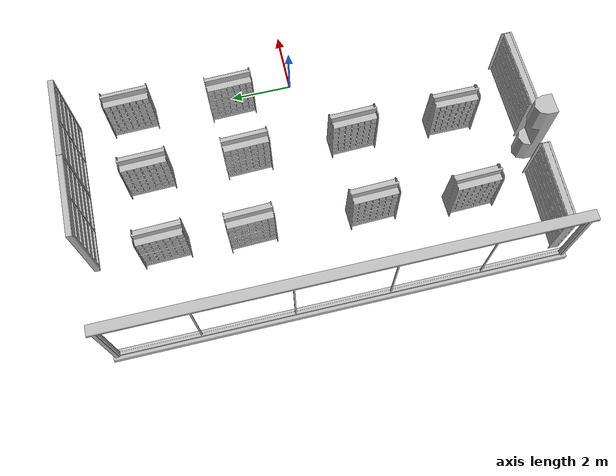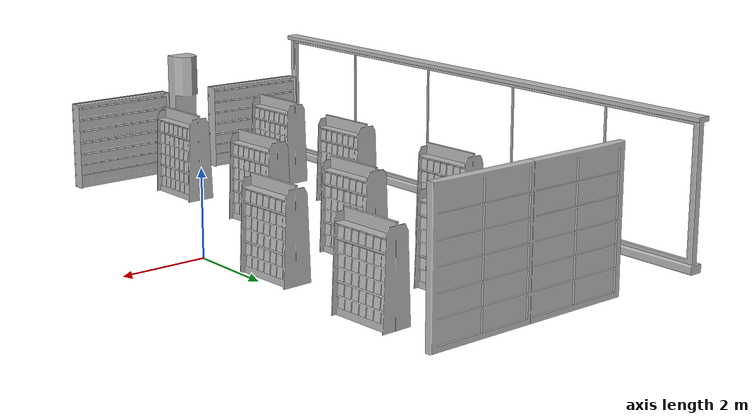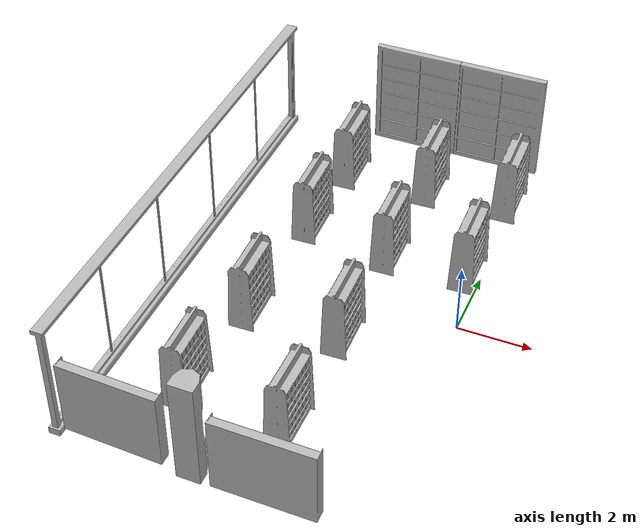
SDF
<sdf version="1.7">
 <world name="default">
  <model name="BookshelfA_01_003">
   <frame name="aws_robomaker_retail_BookshelfA_01::__model__" attached_to="aws_robomaker_retail_BookshelfA_01::link">
    <pose relative_to="__model__">0 0 0 0 -0 0</pose>
   </frame>
   <link name="aws_robomaker_retail_BookshelfA_01::link">
    <inertial>
     <mass>50</mass>
     <inertia><ixx>27.7341</ixx><ixy>0</ixy><ixz>0</ixz><iyy>20.9361</iyy><iyz>0</iyz><izz>11.3596</izz></inertia>
    </inertial>
    <collision name="collision">
     <geometry>
      <mesh>
       <uri>model://aws_robomaker_retail_BookshelfA_01/meshes/aws_BookshelfA_01_collision.DAE</uri>
       <scale>1 1 1</scale>
      </mesh>
     </geometry>
    </collision>
    <visual name="visual">
     <geometry>
      <mesh><uri>model://aws_robomaker_retail_BookshelfA_01/meshes/aws_BookshelfA_01_visual.DAE</uri></mesh>
     </geometry>
     <meta><layer>1</layer></meta>
    </visual>
    <pose relative_to="aws_robomaker_retail_BookshelfA_01::__model__">0 0 0 0 -0 0</pose>
   </link>
   <static>1</static>
   <pose>-2.55449 -1.48746 0.006337 0.001313 -0.001987 0.031824</pose>
  </model>
  <model name="BookshelfA_01_004">
   <frame name="aws_robomaker_retail_BookshelfA_01::__model__" attached_to="aws_robomaker_retail_BookshelfA_01::link">
    <pose relative_to="__model__">0 0 0 0 -0 0</pose>
   </frame>
   <link name="aws_robomaker_retail_BookshelfA_01::link">
    <inertial>
     <mass>50</mass>
     <inertia><ixx>27.7341</ixx><ixy>0</ixy><ixz>0</ixz><iyy>20.9361</iyy><iyz>0</iyz><izz>11.3596</izz></inertia>
    </inertial>
    <collision name="collision">
     <geometry>
      <mesh>
       <uri>model://aws_robomaker_retail_BookshelfA_01/meshes/aws_BookshelfA_01_collision.DAE</uri>
       <scale>1 1 1</scale>
      </mesh>
     </geometry>
    </collision>
    <visual name="visual">
     <geometry>
      <mesh><uri>model://aws_robomaker_retail_BookshelfA_01/meshes/aws_BookshelfA_01_visual.DAE</uri></mesh>
     </geometry>
     <meta><layer>1</layer></meta>
    </visual>
    <pose relative_to="aws_robomaker_retail_BookshelfA_01::__model__">0 0 0 0 -0 0</pose>
   </link>
   <static>1</static>
   <pose>-2.60858 -4.76165 0.003411 0 -0 0</pose>
  </model>
  <model name="BookshelfB_01_001">
   <frame name="aws_robomaker_retail_BookshelfB_01::__model__" attached_to="aws_robomaker_retail_BookshelfB_01::link">
    <pose relative_to="__model__">0 0 0 0 -0 0</pose>
   </frame>
   <link name="aws_robomaker_retail_BookshelfB_01::link">
    <inertial>
     <mass>50</mass>
     <inertia><ixx>19.8742</ixx><ixy>0</ixy><ixz>0</ixz><iyy>49.1263</iyy><iyz>0</iyz><izz>30.2231</izz></inertia>
    </inertial>
    <collision name="collision">
     <geometry>
      <mesh>
       <uri>model://aws_robomaker_retail_BookshelfB_01/meshes/aws_BookshelfB_01_collision.DAE</uri>
       <scale>1 1 1</scale>
      </mesh>
     </geometry>
    </collision>
    <visual name="visual">
     <geometry>
      <mesh><uri>model://aws_robomaker_retail_BookshelfB_01/meshes/aws_BookshelfB_01_visual.DAE</uri></mesh>
     </geometry>
     <meta><layer>1</layer></meta>
    </visual>
    <pose relative_to="aws_robomaker_retail_BookshelfB_01::__model__">0 0 0 0 -0 0</pose>
   </link>
   <static>1</static>
   <pose>-6.18968 -6.78565 -0.008942 0.003533 0.000121 -0.032073</pose>
  </model>
  <model name="BookshelfB_01_002">
   <frame name="aws_robomaker_retail_BookshelfB_01::__model__" attached_to="aws_robomaker_retail_BookshelfB_01::link">
    <pose relative_to="__model__">0 0 0 0 -0 0</pose>
   </frame>
   <link name="aws_robomaker_retail_BookshelfB_01::link">
    <inertial>
     <mass>50</mass>
     <inertia><ixx>19.8742</ixx><ixy>0</ixy><ixz>0</ixz><iyy>49.1263</iyy><iyz>0</iyz><izz>30.2231</izz></inertia>
    </inertial>
    <collision name="collision">
     <geometry>
      <mesh>
       <uri>model://aws_robomaker_retail_BookshelfB_01/meshes/aws_BookshelfB_01_collision.DAE</uri>
       <scale>1 1 1</scale>
      </mesh>
     </geometry>
    </collision>
    <visual name="visual">
     <geometry>
      <mesh><uri>model://aws_robomaker_retail_BookshelfB_01/meshes/aws_BookshelfB_01_visual.DAE</uri></mesh>
     </geometry>
     <meta><layer>1</layer></meta>
    </visual>
    <pose relative_to="aws_robomaker_retail_BookshelfB_01::__model__">0 0 0 0 -0 0</pose>
   </link>
   <static>1</static>
   <pose>-2.20941 -6.97146 0.017074 -0.000128 -0.000252 0.000364</pose>
  </model>
  <model name="ColumnB_01_002">
   <frame name="aws_robomaker_retail_ColumnB_01::__model__" attached_to="aws_robomaker_retail_ColumnB_01::link">
    <pose relative_to="__model__">0 0 0 0 -0 0</pose>
   </frame>
   <link name="aws_robomaker_retail_ColumnB_01::link">
    <inertial>
     <mass>50</mass>
     <inertia><ixx>44.5597</ixx><ixy>0</ixy><ixz>0</ixz><iyy>44.5597</iyy><iyz>0</iyz><izz>1.87942</izz></inertia>
    </inertial>
    <collision name="collision">
     <geometry>
      <mesh>
       <uri>model://aws_robomaker_retail_ColumnB_01/meshes/aws_ColumnB_01_collision.DAE</uri>
       <scale>1 1 1</scale>
      </mesh>
     </geometry>
    </collision>
    <visual name="visual">
     <geometry>
      <mesh><uri>model://aws_robomaker_retail_ColumnB_01/meshes/aws_ColumnB_01_visual.DAE</uri></mesh>
     </geometry>
     <meta><layer>1</layer></meta>
    </visual>
    <pose relative_to="aws_robomaker_retail_ColumnB_01::__model__">0 0 0 0 -0 0</pose>
   </link>
   <static>1</static>
   <pose>-4.07623 -6.86071 0.017511 0.001895 -0.000628 -0.003755</pose>
  </model>
  <model name="DoorB_01_001">
   <frame name="aws_robomaker_retail_DoorB_01::__model__" attached_to="aws_robomaker_retail_DoorB_01::link">
    <pose relative_to="__model__">0 0 0 0 -0 0</pose>
   </frame>
   <link name="aws_robomaker_retail_DoorB_01::link">
    <inertial>
     <mass>50</mass>
     <inertia><ixx>44.5597</ixx><ixy>0</ixy><ixz>0</ixz><iyy>151.699</iyy><iyz>0</iyz><izz>107.806</izz></inertia>
    </inertial>
    <collision name="collision">
     <geometry>
      <mesh>
       <uri>model://aws_robomaker_retail_DoorB_01/meshes/aws_DoorB_01_collision.DAE</uri>
       <scale>1 1 1</scale>
      </mesh>
     </geometry>
    </collision>
    <visual name="visual">
     <geometry>
      <mesh><uri>model://aws_robomaker_retail_DoorB_01/meshes/aws_DoorB_01_visual.DAE</uri></mesh>
     </geometry>
     <meta><layer>2</layer></meta>
    </visual>
    <pose relative_to="aws_robomaker_retail_DoorB_01::__model__">0 0 0 0 -0 0</pose>
   </link>
   <static>1</static>
   <pose>-2.49246 7.21937 -0.035203 0 -0 0</pose>
  </model>
  <model name="ShopWindow_01_001">
   <frame name="aws_robomaker_retail_ShopWindow_01::__model__" attached_to="aws_robomaker_retail_ShopWindow_01::link">
    <pose relative_to="__model__">0 0 0 0 -0 0</pose>
   </frame>
   <link name="aws_robomaker_retail_ShopWindow_01::link">
    <inertial><mass>1</mass></inertial>
    <collision name="collision">
     <geometry>
      <mesh>
       <uri>model://aws_robomaker_retail_ShopWindow_01/meshes/aws_ShopWindow_01_collision.DAE</uri>
       <scale>1 1 1</scale>
      </mesh>
     </geometry>
    </collision>
    <visual name="visual">
     <geometry>
      <mesh><uri>model://aws_robomaker_retail_ShopWindow_01/meshes/aws_ShopWindow_01_visual.DAE</uri></mesh>
     </geometry>
    </visual>
    <pose relative_to="aws_robomaker_retail_ShopWindow_01::__model__">0 0 0 0 -0 0</pose>
   </link>
   <static>1</static>
   <pose>-7.73816 0.01596 -0.180092 0 -0 0</pose>
  </model>
  <model name="BookshelfA_01_003_clone">
   <frame name="aws_robomaker_retail_BookshelfA_01::__model__" attached_to="aws_robomaker_retail_BookshelfA_01::link">
    <pose relative_to="__model__">0 0 0 0 -0 0</pose>
   </frame>
   <link name="aws_robomaker_retail_BookshelfA_01::link">
    <inertial>
     <mass>50</mass>
     <inertia><ixx>27.7341</ixx><ixy>0</ixy><ixz>0</ixz><iyy>20.9361</iyy><iyz>0</iyz><izz>11.3596</izz></inertia>
    </inertial>
    <collision name="collision">
     <geometry>
      <mesh>
       <uri>model://aws_robomaker_retail_BookshelfA_01/meshes/aws_BookshelfA_01_collision.DAE</uri>
       <scale>1 1 1</scale>
      </mesh>
     </geometry>
    </collision>
    <visual name="visual">
     <geometry>
      <mesh><uri>model://aws_robomaker_retail_BookshelfA_01/meshes/aws_BookshelfA_01_visual.DAE</uri></mesh>
     </geometry>
     <meta><layer>1</layer></meta>
    </visual>
    <pose relative_to="aws_robomaker_retail_BookshelfA_01::__model__">0 0 0 0 -0 0</pose>
   </link>
   <static>1</static>
   <pose>-2.5681 1.94712 0.006337 0.001313 -0.001987 0.031824</pose>
  </model>
  <model name="BookshelfA_01_003_clone_0">
   <frame name="aws_robomaker_retail_BookshelfA_01::__model__" attached_to="aws_robomaker_retail_BookshelfA_01::link">
    <pose relative_to="__model__">0 0 0 0 -0 0</pose>
   </frame>
   <link name="aws_robomaker_retail_BookshelfA_01::link">
    <inertial>
     <mass>50</mass>
     <inertia><ixx>27.7341</ixx><ixy>0</ixy><ixz>0</ixz><iyy>20.9361</iyy><iyz>0</iyz><izz>11.3596</izz></inertia>
    </inertial>
    <collision name="collision">
     <geometry>
      <mesh>
       <uri>model://aws_robomaker_retail_BookshelfA_01/meshes/aws_BookshelfA_01_collision.DAE</uri>
       <scale>1 1 1</scale>
      </mesh>
     </geometry>
    </collision>
    <visual name="visual">
     <geometry>
      <mesh><uri>model://aws_robomaker_retail_BookshelfA_01/meshes/aws_BookshelfA_01_visual.DAE</uri></mesh>
     </geometry>
     <meta><layer>1</layer></meta>
    </visual>
    <pose relative_to="aws_robomaker_retail_BookshelfA_01::__model__">0 0 0 0 -0 0</pose>
   </link>
   <static>1</static>
   <pose>-2.50946 5.10856 0.006337 0.001313 -0.001987 0.031824</pose>
  </model>
  <model name="BookshelfA_01_003_clone_1">
   <frame name="aws_robomaker_retail_BookshelfA_01::__model__" attached_to="aws_robomaker_retail_BookshelfA_01::link">
    <pose relative_to="__model__">0 0 0 0 -0 0</pose>
   </frame>
   <link name="aws_robomaker_retail_BookshelfA_01::link">
    <inertial>
     <mass>50</mass>
     <inertia><ixx>27.7341</ixx><ixy>0</ixy><ixz>0</ixz><iyy>20.9361</iyy><iyz>0</iyz><izz>11.3596</izz></inertia>
    </inertial>
    <collision name="collision">
     <geometry>
      <mesh>
       <uri>model://aws_robomaker_retail_BookshelfA_01/meshes/aws_BookshelfA_01_collision.DAE</uri>
       <scale>1 1 1</scale>
      </mesh>
     </geometry>
    </collision>
    <visual name="visual">
     <geometry>
      <mesh><uri>model://aws_robomaker_retail_BookshelfA_01/meshes/aws_BookshelfA_01_visual.DAE</uri></mesh>
     </geometry>
     <meta><layer>1</layer></meta>
    </visual>
    <pose relative_to="aws_robomaker_retail_BookshelfA_01::__model__">0 0 0 0 -0 0</pose>
   </link>
   <static>1</static>
   <pose>-0.382022 2.0537 0.006337 0.001313 -0.001987 0.031824</pose>
  </model>
  <model name="BookshelfA_01_003_clone_2">
   <frame name="aws_robomaker_retail_BookshelfA_01::__model__" attached_to="aws_robomaker_retail_BookshelfA_01::link">
    <pose relative_to="__model__">0 0 0 0 -0 0</pose>
   </frame>
   <link name="aws_robomaker_retail_BookshelfA_01::link">
    <inertial>
     <mass>50</mass>
     <inertia><ixx>27.7341</ixx><ixy>0</ixy><ixz>0</ixz><iyy>20.9361</iyy><iyz>0</iyz><izz>11.3596</izz></inertia>
    </inertial>
    <collision name="collision">
     <geometry>
      <mesh>
       <uri>model://aws_robomaker_retail_BookshelfA_01/meshes/aws_BookshelfA_01_collision.DAE</uri>
       <scale>1 1 1</scale>
      </mesh>
     </geometry>
    </collision>
    <visual name="visual">
     <geometry>
      <mesh><uri>model://aws_robomaker_retail_BookshelfA_01/meshes/aws_BookshelfA_01_visual.DAE</uri></mesh>
     </geometry>
     <meta><layer>1</layer></meta>
    </visual>
    <pose relative_to="aws_robomaker_retail_BookshelfA_01::__model__">0 0 0 0 -0 0</pose>
   </link>
   <static>1</static>
   <pose>-0.21639 5.31787 0.006337 0.001313 -0.001987 0.031824</pose>
  </model>
  <model name="BookshelfA_01_003_clone_5">
   <frame name="aws_robomaker_retail_BookshelfA_01::__model__" attached_to="aws_robomaker_retail_BookshelfA_01::link">
    <pose relative_to="__model__">0 0 0 0 -0 0</pose>
   </frame>
   <link name="aws_robomaker_retail_BookshelfA_01::link">
    <inertial>
     <mass>50</mass>
     <inertia><ixx>27.7341</ixx><ixy>0</ixy><ixz>0</ixz><iyy>20.9361</iyy><iyz>0</iyz><izz>11.3596</izz></inertia>
    </inertial>
    <collision name="collision">
     <geometry>
      <mesh>
       <uri>model://aws_robomaker_retail_BookshelfA_01/meshes/aws_BookshelfA_01_collision.DAE</uri>
       <scale>1 1 1</scale>
      </mesh>
     </geometry>
    </collision>
    <visual name="visual">
     <geometry>
      <mesh><uri>model://aws_robomaker_retail_BookshelfA_01/meshes/aws_BookshelfA_01_visual.DAE</uri></mesh>
     </geometry>
     <meta><layer>1</layer></meta>
    </visual>
    <pose relative_to="aws_robomaker_retail_BookshelfA_01::__model__">0 0 0 0 -0 0</pose>
   </link>
   <static>1</static>
   <pose>-5.40777 -4.59562 0.006337 0.001313 -0.001987 0.031824</pose>
  </model>
  <model name="BookshelfA_01_003_clone_6">
   <frame name="aws_robomaker_retail_BookshelfA_01::__model__" attached_to="aws_robomaker_retail_BookshelfA_01::link">
    <pose relative_to="__model__">0 0 0 0 -0 0</pose>
   </frame>
   <link name="aws_robomaker_retail_BookshelfA_01::link">
    <inertial>
     <mass>50</mass>
     <inertia><ixx>27.7341</ixx><ixy>0</ixy><ixz>0</ixz><iyy>20.9361</iyy><iyz>0</iyz><izz>11.3596</izz></inertia>
    </inertial>
    <collision name="collision">
     <geometry>
      <mesh>
       <uri>model://aws_robomaker_retail_BookshelfA_01/meshes/aws_BookshelfA_01_collision.DAE</uri>
       <scale>1 1 1</scale>
      </mesh>
     </geometry>
    </collision>
    <visual name="visual">
     <geometry>
      <mesh><uri>model://aws_robomaker_retail_BookshelfA_01/meshes/aws_BookshelfA_01_visual.DAE</uri></mesh>
     </geometry>
     <meta><layer>1</layer></meta>
    </visual>
    <pose relative_to="aws_robomaker_retail_BookshelfA_01::__model__">0 0 0 0 -0 0</pose>
   </link>
   <static>1</static>
   <pose>-5.13572 -1.46702 0.006337 0.001313 -0.001987 0.031824</pose>
  </model>
  <model name="BookshelfA_01_003_clone_7">
   <frame name="aws_robomaker_retail_BookshelfA_01::__model__" attached_to="aws_robomaker_retail_BookshelfA_01::link">
    <pose relative_to="__model__">0 0 0 0 -0 0</pose>
   </frame>
   <link name="aws_robomaker_retail_BookshelfA_01::link">
    <inertial>
     <mass>50</mass>
     <inertia><ixx>27.7341</ixx><ixy>0</ixy><ixz>0</ixz><iyy>20.9361</iyy><iyz>0</iyz><izz>11.3596</izz></inertia>
    </inertial>
    <collision name="collision">
     <geometry>
      <mesh>
       <uri>model://aws_robomaker_retail_BookshelfA_01/meshes/aws_BookshelfA_01_collision.DAE</uri>
       <scale>1 1 1</scale>
      </mesh>
     </geometry>
    </collision>
    <visual name="visual">
     <geometry>
      <mesh><uri>model://aws_robomaker_retail_BookshelfA_01/meshes/aws_BookshelfA_01_visual.DAE</uri></mesh>
     </geometry>
     <meta><layer>1</layer></meta>
    </visual>
    <pose relative_to="aws_robomaker_retail_BookshelfA_01::__model__">0 0 0 0 -0 0</pose>
   </link>
   <static>1</static>
   <pose>-5.02741 2.31699 0.006337 0.001313 -0.001987 0.031824</pose>
  </model>
  <model name="BookshelfA_01_003_clone_8">
   <frame name="aws_robomaker_retail_BookshelfA_01::__model__" attached_to="aws_robomaker_retail_BookshelfA_01::link">
    <pose relative_to="__model__">0 0 0 0 -0 0</pose>
   </frame>
   <link name="aws_robomaker_retail_BookshelfA_01::link">
    <inertial>
     <mass>50</mass>
     <inertia><ixx>27.7341</ixx><ixy>0</ixy><ixz>0</ixz><iyy>20.9361</iyy><iyz>0</iyz><izz>11.3596</izz></inertia>
    </inertial>
    <collision name="collision">
     <geometry>
      <mesh>
       <uri>model://aws_robomaker_retail_BookshelfA_01/meshes/aws_BookshelfA_01_collision.DAE</uri>
       <scale>1 1 1</scale>
      </mesh>
     </geometry>
    </collision>
    <visual name="visual">
     <geometry>
      <mesh><uri>model://aws_robomaker_retail_BookshelfA_01/meshes/aws_BookshelfA_01_visual.DAE</uri></mesh>
     </geometry>
     <meta><layer>1</layer></meta>
    </visual>
    <pose relative_to="aws_robomaker_retail_BookshelfA_01::__model__">0 0 0 0 -0 0</pose>
   </link>
   <static>1</static>
   <pose>-4.9365 5.00638 0.006337 0.001313 -0.001987 0.031824</pose>
  </model>
 </world>
</sdf>
